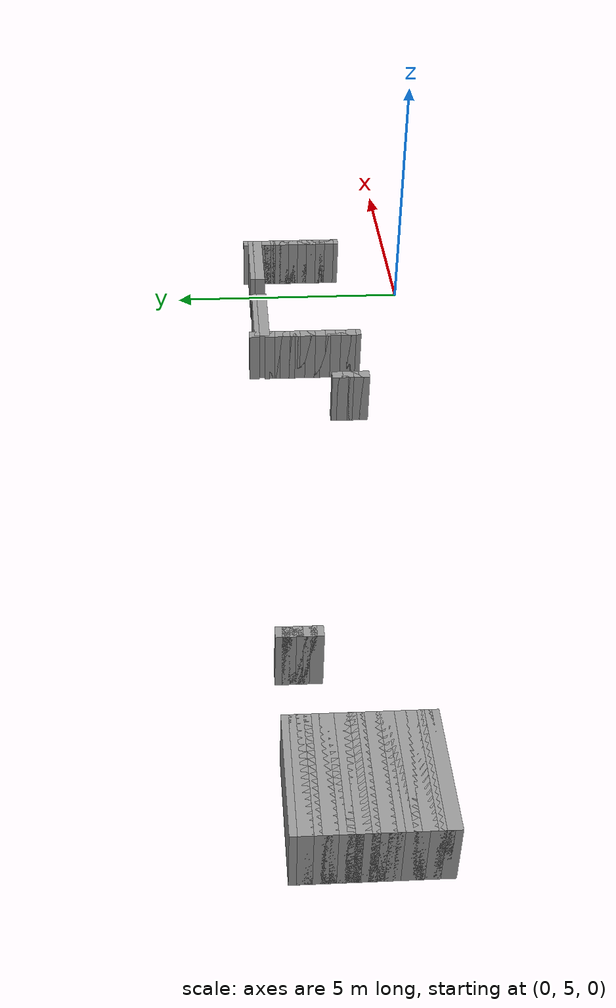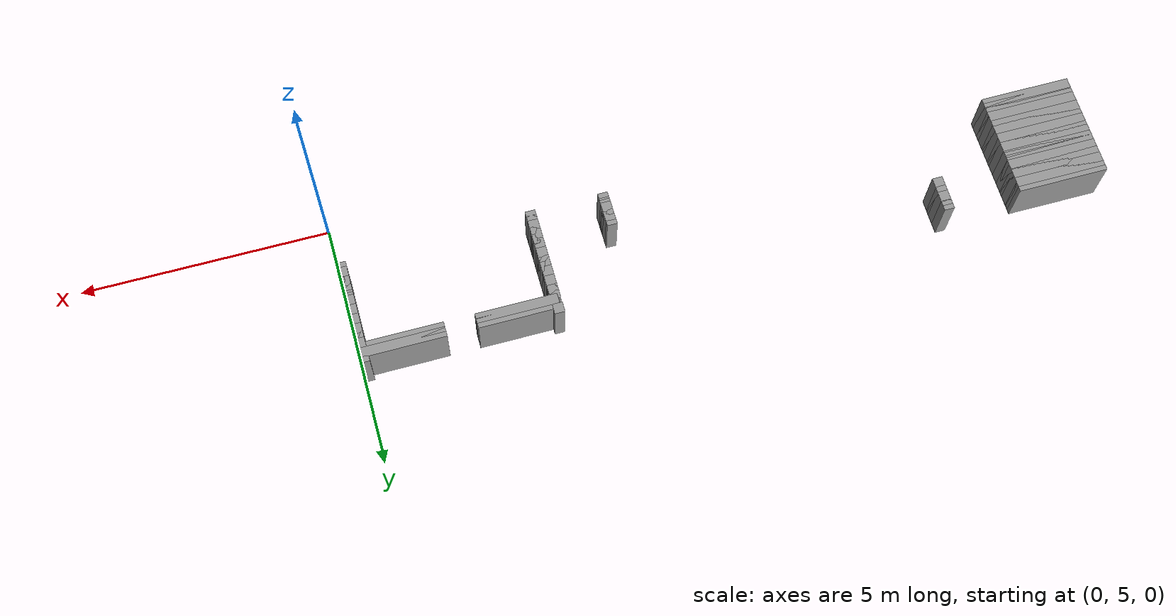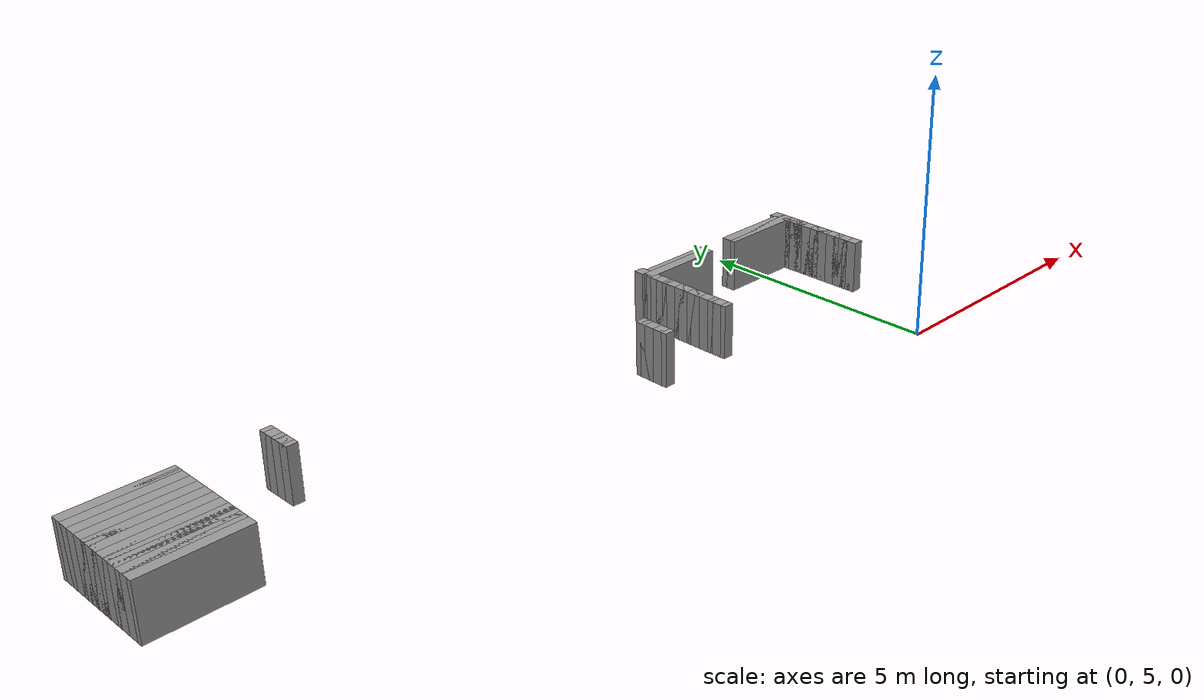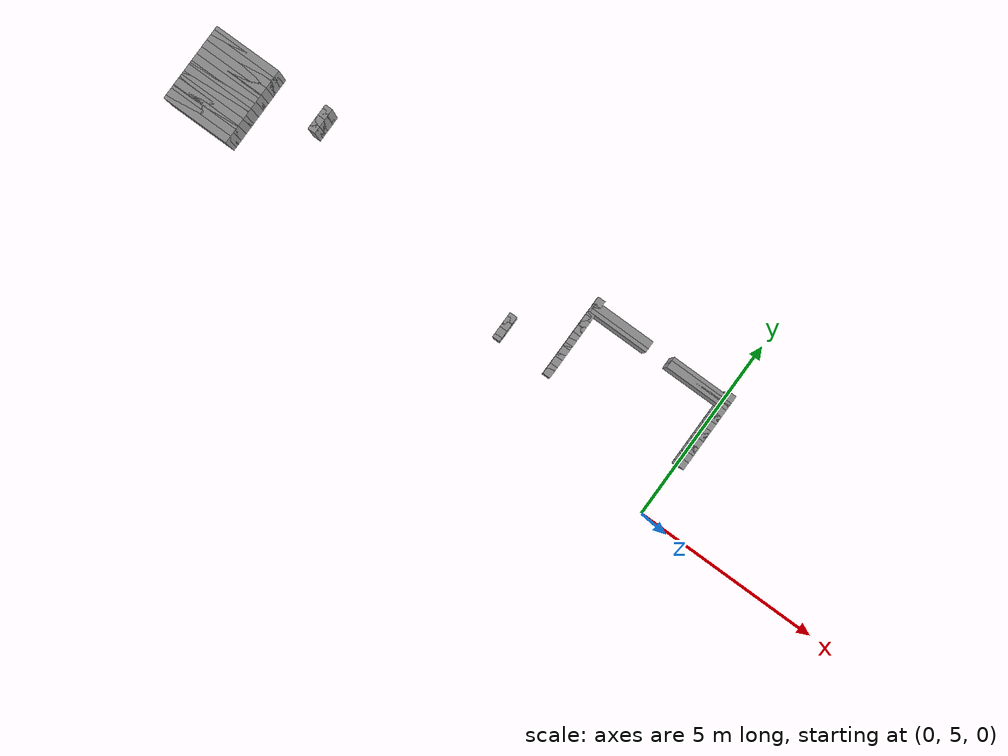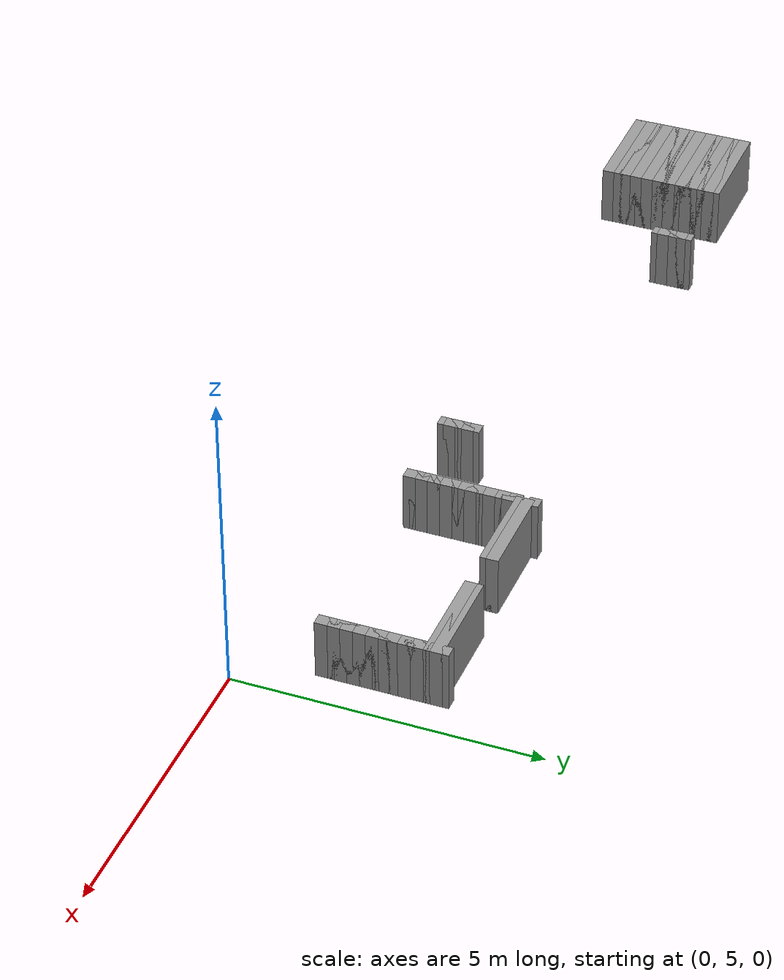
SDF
<sdf version="1.6">
 <world name="GridMap">
  <model name="GridMap">
   <link name="Wall_(38.5,64.0)">
    <collision name="Wall_(38.5,64.0)_Collision">
     <geometry><box><size>0.2 0.2 1.0</size></box></geometry>
     <pose>-3.85 6.4 0.5 0 -0 0</pose>
    </collision>
    <visual name="Wall_(38.5,64.0)_Visual">
     <geometry><box><size>0.2 0.2 1.0</size></box></geometry>
     <pose>-3.85 6.4 0.5 0 -0 0</pose>
     <material>
      <script><uri>file://media/materials/scripts/gazebo.material</uri><name>Gazebo/Grey</name></script>
      <ambient>1 1 1 1</ambient>
     </material>
     <meta><layer>0</layer></meta>
    </visual>
    <pose>0 0 0.5 0 -0 0</pose>
   </link>
   <link name="Wall_(53.0,64.0)">
    <collision name="Wall_(53.0,64.0)_Collision">
     <geometry><box><size>0.2 0.2 1.0</size></box></geometry>
     <pose>-5.300000000000001 6.4 0.5 0 -0 0</pose>
    </collision>
    <visual name="Wall_(53.0,64.0)_Visual">
     <geometry><box><size>0.2 0.2 1.0</size></box></geometry>
     <pose>-5.300000000000001 6.4 0.5 0 -0 0</pose>
     <material>
      <script><uri>file://media/materials/scripts/gazebo.material</uri><name>Gazebo/Grey</name></script>
      <ambient>1 1 1 1</ambient>
     </material>
     <meta><layer>0</layer></meta>
    </visual>
    <pose>0 0 0.5 0 -0 0</pose>
   </link>
   <link name="Wall_(140.0,64.0)">
    <collision name="Wall_(140.0,64.0)_Collision">
     <geometry><box><size>1.8 0.2 1.0</size></box></geometry>
     <pose>-14.0 6.4 0.5 0 -0 0</pose>
    </collision>
    <visual name="Wall_(140.0,64.0)_Visual">
     <geometry><box><size>1.8 0.2 1.0</size></box></geometry>
     <pose>-14.0 6.4 0.5 0 -0 0</pose>
     <material>
      <script><uri>file://media/materials/scripts/gazebo.material</uri><name>Gazebo/Grey</name></script>
      <ambient>1 1 1 1</ambient>
     </material>
     <meta><layer>0</layer></meta>
    </visual>
    <pose>0 0 0.5 0 -0 0</pose>
   </link>
   <link name="Wall_(1.0,65.0)">
    <collision name="Wall_(1.0,65.0)_Collision">
     <geometry><box><size>0.2 0.2 1.0</size></box></geometry>
     <pose>-0.1 6.5 0.5 0 -0 0</pose>
    </collision>
    <visual name="Wall_(1.0,65.0)_Visual">
     <geometry><box><size>0.2 0.2 1.0</size></box></geometry>
     <pose>-0.1 6.5 0.5 0 -0 0</pose>
     <material>
      <script><uri>file://media/materials/scripts/gazebo.material</uri><name>Gazebo/Grey</name></script>
      <ambient>1 1 1 1</ambient>
     </material>
     <meta><layer>0</layer></meta>
    </visual>
    <pose>0 0 0.5 0 -0 0</pose>
   </link>
   <link name="Wall_(38.5,65.0)">
    <collision name="Wall_(38.5,65.0)_Collision">
     <geometry><box><size>0.2 0.2 1.0</size></box></geometry>
     <pose>-3.85 6.5 0.5 0 -0 0</pose>
    </collision>
    <visual name="Wall_(38.5,65.0)_Visual">
     <geometry><box><size>0.2 0.2 1.0</size></box></geometry>
     <pose>-3.85 6.5 0.5 0 -0 0</pose>
     <material>
      <script><uri>file://media/materials/scripts/gazebo.material</uri><name>Gazebo/Grey</name></script>
      <ambient>1 1 1 1</ambient>
     </material>
     <meta><layer>0</layer></meta>
    </visual>
    <pose>0 0 0.5 0 -0 0</pose>
   </link>
   <link name="Wall_(53.0,65.0)">
    <collision name="Wall_(53.0,65.0)_Collision">
     <geometry><box><size>0.2 0.2 1.0</size></box></geometry>
     <pose>-5.300000000000001 6.5 0.5 0 -0 0</pose>
    </collision>
    <visual name="Wall_(53.0,65.0)_Visual">
     <geometry><box><size>0.2 0.2 1.0</size></box></geometry>
     <pose>-5.300000000000001 6.5 0.5 0 -0 0</pose>
     <material>
      <script><uri>file://media/materials/scripts/gazebo.material</uri><name>Gazebo/Grey</name></script>
      <ambient>1 1 1 1</ambient>
     </material>
     <meta><layer>0</layer></meta>
    </visual>
    <pose>0 0 0.5 0 -0 0</pose>
   </link>
   <link name="Wall_(140.0,65.0)">
    <collision name="Wall_(140.0,65.0)_Collision">
     <geometry><box><size>1.8 0.2 1.0</size></box></geometry>
     <pose>-14.0 6.5 0.5 0 -0 0</pose>
    </collision>
    <visual name="Wall_(140.0,65.0)_Visual">
     <geometry><box><size>1.8 0.2 1.0</size></box></geometry>
     <pose>-14.0 6.5 0.5 0 -0 0</pose>
     <material>
      <script><uri>file://media/materials/scripts/gazebo.material</uri><name>Gazebo/Grey</name></script>
      <ambient>1 1 1 1</ambient>
     </material>
     <meta><layer>0</layer></meta>
    </visual>
    <pose>0 0 0.5 0 -0 0</pose>
   </link>
   <link name="Wall_(1.0,66.0)">
    <collision name="Wall_(1.0,66.0)_Collision">
     <geometry><box><size>0.2 0.2 1.0</size></box></geometry>
     <pose>-0.1 6.6000000000000005 0.5 0 -0 0</pose>
    </collision>
    <visual name="Wall_(1.0,66.0)_Visual">
     <geometry><box><size>0.2 0.2 1.0</size></box></geometry>
     <pose>-0.1 6.6000000000000005 0.5 0 -0 0</pose>
     <material>
      <script><uri>file://media/materials/scripts/gazebo.material</uri><name>Gazebo/Grey</name></script>
      <ambient>1 1 1 1</ambient>
     </material>
     <meta><layer>0</layer></meta>
    </visual>
    <pose>0 0 0.5 0 -0 0</pose>
   </link>
   <link name="Wall_(38.5,66.0)">
    <collision name="Wall_(38.5,66.0)_Collision">
     <geometry><box><size>0.2 0.2 1.0</size></box></geometry>
     <pose>-3.85 6.6000000000000005 0.5 0 -0 0</pose>
    </collision>
    <visual name="Wall_(38.5,66.0)_Visual">
     <geometry><box><size>0.2 0.2 1.0</size></box></geometry>
     <pose>-3.85 6.6000000000000005 0.5 0 -0 0</pose>
     <material>
      <script><uri>file://media/materials/scripts/gazebo.material</uri><name>Gazebo/Grey</name></script>
      <ambient>1 1 1 1</ambient>
     </material>
     <meta><layer>0</layer></meta>
    </visual>
    <pose>0 0 0.5 0 -0 0</pose>
   </link>
   <link name="Wall_(53.0,66.0)">
    <collision name="Wall_(53.0,66.0)_Collision">
     <geometry><box><size>0.2 0.2 1.0</size></box></geometry>
     <pose>-5.300000000000001 6.6000000000000005 0.5 0 -0 0</pose>
    </collision>
    <visual name="Wall_(53.0,66.0)_Visual">
     <geometry><box><size>0.2 0.2 1.0</size></box></geometry>
     <pose>-5.300000000000001 6.6000000000000005 0.5 0 -0 0</pose>
     <material>
      <script><uri>file://media/materials/scripts/gazebo.material</uri><name>Gazebo/Grey</name></script>
      <ambient>1 1 1 1</ambient>
     </material>
     <meta><layer>0</layer></meta>
    </visual>
    <pose>0 0 0.5 0 -0 0</pose>
   </link>
   <link name="Wall_(140.0,66.0)">
    <collision name="Wall_(140.0,66.0)_Collision">
     <geometry><box><size>1.8 0.2 1.0</size></box></geometry>
     <pose>-14.0 6.6000000000000005 0.5 0 -0 0</pose>
    </collision>
    <visual name="Wall_(140.0,66.0)_Visual">
     <geometry><box><size>1.8 0.2 1.0</size></box></geometry>
     <pose>-14.0 6.6000000000000005 0.5 0 -0 0</pose>
     <material>
      <script><uri>file://media/materials/scripts/gazebo.material</uri><name>Gazebo/Grey</name></script>
      <ambient>1 1 1 1</ambient>
     </material>
     <meta><layer>0</layer></meta>
    </visual>
    <pose>0 0 0.5 0 -0 0</pose>
   </link>
   <link name="Wall_(1.0,67.0)">
    <collision name="Wall_(1.0,67.0)_Collision">
     <geometry><box><size>0.2 0.2 1.0</size></box></geometry>
     <pose>-0.1 6.7 0.5 0 -0 0</pose>
    </collision>
    <visual name="Wall_(1.0,67.0)_Visual">
     <geometry><box><size>0.2 0.2 1.0</size></box></geometry>
     <pose>-0.1 6.7 0.5 0 -0 0</pose>
     <material>
      <script><uri>file://media/materials/scripts/gazebo.material</uri><name>Gazebo/Grey</name></script>
      <ambient>1 1 1 1</ambient>
     </material>
     <meta><layer>0</layer></meta>
    </visual>
    <pose>0 0 0.5 0 -0 0</pose>
   </link>
   <link name="Wall_(38.5,67.0)">
    <collision name="Wall_(38.5,67.0)_Collision">
     <geometry><box><size>0.2 0.2 1.0</size></box></geometry>
     <pose>-3.85 6.7 0.5 0 -0 0</pose>
    </collision>
    <visual name="Wall_(38.5,67.0)_Visual">
     <geometry><box><size>0.2 0.2 1.0</size></box></geometry>
     <pose>-3.85 6.7 0.5 0 -0 0</pose>
     <material>
      <script><uri>file://media/materials/scripts/gazebo.material</uri><name>Gazebo/Grey</name></script>
      <ambient>1 1 1 1</ambient>
     </material>
     <meta><layer>0</layer></meta>
    </visual>
    <pose>0 0 0.5 0 -0 0</pose>
   </link>
   <link name="Wall_(53.0,67.0)">
    <collision name="Wall_(53.0,67.0)_Collision">
     <geometry><box><size>0.2 0.2 1.0</size></box></geometry>
     <pose>-5.300000000000001 6.7 0.5 0 -0 0</pose>
    </collision>
    <visual name="Wall_(53.0,67.0)_Visual">
     <geometry><box><size>0.2 0.2 1.0</size></box></geometry>
     <pose>-5.300000000000001 6.7 0.5 0 -0 0</pose>
     <material>
      <script><uri>file://media/materials/scripts/gazebo.material</uri><name>Gazebo/Grey</name></script>
      <ambient>1 1 1 1</ambient>
     </material>
     <meta><layer>0</layer></meta>
    </visual>
    <pose>0 0 0.5 0 -0 0</pose>
   </link>
   <link name="Wall_(140.0,67.0)">
    <collision name="Wall_(140.0,67.0)_Collision">
     <geometry><box><size>1.8 0.2 1.0</size></box></geometry>
     <pose>-14.0 6.7 0.5 0 -0 0</pose>
    </collision>
    <visual name="Wall_(140.0,67.0)_Visual">
     <geometry><box><size>1.8 0.2 1.0</size></box></geometry>
     <pose>-14.0 6.7 0.5 0 -0 0</pose>
     <material>
      <script><uri>file://media/materials/scripts/gazebo.material</uri><name>Gazebo/Grey</name></script>
      <ambient>1 1 1 1</ambient>
     </material>
     <meta><layer>0</layer></meta>
    </visual>
    <pose>0 0 0.5 0 -0 0</pose>
   </link>
   <link name="Wall_(1.0,68.0)">
    <collision name="Wall_(1.0,68.0)_Collision">
     <geometry><box><size>0.2 0.2 1.0</size></box></geometry>
     <pose>-0.1 6.800000000000001 0.5 0 -0 0</pose>
    </collision>
    <visual name="Wall_(1.0,68.0)_Visual">
     <geometry><box><size>0.2 0.2 1.0</size></box></geometry>
     <pose>-0.1 6.800000000000001 0.5 0 -0 0</pose>
     <material>
      <script><uri>file://media/materials/scripts/gazebo.material</uri><name>Gazebo/Grey</name></script>
      <ambient>1 1 1 1</ambient>
     </material>
     <meta><layer>0</layer></meta>
    </visual>
    <pose>0 0 0.5 0 -0 0</pose>
   </link>
   <link name="Wall_(38.5,68.0)">
    <collision name="Wall_(38.5,68.0)_Collision">
     <geometry><box><size>0.2 0.2 1.0</size></box></geometry>
     <pose>-3.85 6.800000000000001 0.5 0 -0 0</pose>
    </collision>
    <visual name="Wall_(38.5,68.0)_Visual">
     <geometry><box><size>0.2 0.2 1.0</size></box></geometry>
     <pose>-3.85 6.800000000000001 0.5 0 -0 0</pose>
     <material>
      <script><uri>file://media/materials/scripts/gazebo.material</uri><name>Gazebo/Grey</name></script>
      <ambient>1 1 1 1</ambient>
     </material>
     <meta><layer>0</layer></meta>
    </visual>
    <pose>0 0 0.5 0 -0 0</pose>
   </link>
   <link name="Wall_(53.0,68.0)">
    <collision name="Wall_(53.0,68.0)_Collision">
     <geometry><box><size>0.2 0.2 1.0</size></box></geometry>
     <pose>-5.300000000000001 6.800000000000001 0.5 0 -0 0</pose>
    </collision>
    <visual name="Wall_(53.0,68.0)_Visual">
     <geometry><box><size>0.2 0.2 1.0</size></box></geometry>
     <pose>-5.300000000000001 6.800000000000001 0.5 0 -0 0</pose>
     <material>
      <script><uri>file://media/materials/scripts/gazebo.material</uri><name>Gazebo/Grey</name></script>
      <ambient>1 1 1 1</ambient>
     </material>
     <meta><layer>0</layer></meta>
    </visual>
    <pose>0 0 0.5 0 -0 0</pose>
   </link>
   <link name="Wall_(140.0,68.0)">
    <collision name="Wall_(140.0,68.0)_Collision">
     <geometry><box><size>1.8 0.2 1.0</size></box></geometry>
     <pose>-14.0 6.800000000000001 0.5 0 -0 0</pose>
    </collision>
    <visual name="Wall_(140.0,68.0)_Visual">
     <geometry><box><size>1.8 0.2 1.0</size></box></geometry>
     <pose>-14.0 6.800000000000001 0.5 0 -0 0</pose>
     <material>
      <script><uri>file://media/materials/scripts/gazebo.material</uri><name>Gazebo/Grey</name></script>
      <ambient>1 1 1 1</ambient>
     </material>
     <meta><layer>0</layer></meta>
    </visual>
    <pose>0 0 0.5 0 -0 0</pose>
   </link>
   <link name="Wall_(1.0,69.0)">
    <collision name="Wall_(1.0,69.0)_Collision">
     <geometry><box><size>0.2 0.2 1.0</size></box></geometry>
     <pose>-0.1 6.9 0.5 0 -0 0</pose>
    </collision>
    <visual name="Wall_(1.0,69.0)_Visual">
     <geometry><box><size>0.2 0.2 1.0</size></box></geometry>
     <pose>-0.1 6.9 0.5 0 -0 0</pose>
     <material>
      <script><uri>file://media/materials/scripts/gazebo.material</uri><name>Gazebo/Grey</name></script>
      <ambient>1 1 1 1</ambient>
     </material>
     <meta><layer>0</layer></meta>
    </visual>
    <pose>0 0 0.5 0 -0 0</pose>
   </link>
   <link name="Wall_(38.5,69.0)">
    <collision name="Wall_(38.5,69.0)_Collision">
     <geometry><box><size>0.2 0.2 1.0</size></box></geometry>
     <pose>-3.85 6.9 0.5 0 -0 0</pose>
    </collision>
    <visual name="Wall_(38.5,69.0)_Visual">
     <geometry><box><size>0.2 0.2 1.0</size></box></geometry>
     <pose>-3.85 6.9 0.5 0 -0 0</pose>
     <material>
      <script><uri>file://media/materials/scripts/gazebo.material</uri><name>Gazebo/Grey</name></script>
      <ambient>1 1 1 1</ambient>
     </material>
     <meta><layer>0</layer></meta>
    </visual>
    <pose>0 0 0.5 0 -0 0</pose>
   </link>
   <link name="Wall_(53.0,69.0)">
    <collision name="Wall_(53.0,69.0)_Collision">
     <geometry><box><size>0.2 0.2 1.0</size></box></geometry>
     <pose>-5.300000000000001 6.9 0.5 0 -0 0</pose>
    </collision>
    <visual name="Wall_(53.0,69.0)_Visual">
     <geometry><box><size>0.2 0.2 1.0</size></box></geometry>
     <pose>-5.300000000000001 6.9 0.5 0 -0 0</pose>
     <material>
      <script><uri>file://media/materials/scripts/gazebo.material</uri><name>Gazebo/Grey</name></script>
      <ambient>1 1 1 1</ambient>
     </material>
     <meta><layer>0</layer></meta>
    </visual>
    <pose>0 0 0.5 0 -0 0</pose>
   </link>
   <link name="Wall_(140.0,69.0)">
    <collision name="Wall_(140.0,69.0)_Collision">
     <geometry><box><size>1.8 0.2 1.0</size></box></geometry>
     <pose>-14.0 6.9 0.5 0 -0 0</pose>
    </collision>
    <visual name="Wall_(140.0,69.0)_Visual">
     <geometry><box><size>1.8 0.2 1.0</size></box></geometry>
     <pose>-14.0 6.9 0.5 0 -0 0</pose>
     <material>
      <script><uri>file://media/materials/scripts/gazebo.material</uri><name>Gazebo/Grey</name></script>
      <ambient>1 1 1 1</ambient>
     </material>
     <meta><layer>0</layer></meta>
    </visual>
    <pose>0 0 0.5 0 -0 0</pose>
   </link>
   <link name="Wall_(1.0,70.0)">
    <collision name="Wall_(1.0,70.0)_Collision">
     <geometry><box><size>0.2 0.2 1.0</size></box></geometry>
     <pose>-0.1 7.0 0.5 0 -0 0</pose>
    </collision>
    <visual name="Wall_(1.0,70.0)_Visual">
     <geometry><box><size>0.2 0.2 1.0</size></box></geometry>
     <pose>-0.1 7.0 0.5 0 -0 0</pose>
     <material>
      <script><uri>file://media/materials/scripts/gazebo.material</uri><name>Gazebo/Grey</name></script>
      <ambient>1 1 1 1</ambient>
     </material>
     <meta><layer>0</layer></meta>
    </visual>
    <pose>0 0 0.5 0 -0 0</pose>
   </link>
   <link name="Wall_(38.5,70.0)">
    <collision name="Wall_(38.5,70.0)_Collision">
     <geometry><box><size>0.2 0.2 1.0</size></box></geometry>
     <pose>-3.85 7.0 0.5 0 -0 0</pose>
    </collision>
    <visual name="Wall_(38.5,70.0)_Visual">
     <geometry><box><size>0.2 0.2 1.0</size></box></geometry>
     <pose>-3.85 7.0 0.5 0 -0 0</pose>
     <material>
      <script><uri>file://media/materials/scripts/gazebo.material</uri><name>Gazebo/Grey</name></script>
      <ambient>1 1 1 1</ambient>
     </material>
     <meta><layer>0</layer></meta>
    </visual>
    <pose>0 0 0.5 0 -0 0</pose>
   </link>
   <link name="Wall_(140.0,70.0)">
    <collision name="Wall_(140.0,70.0)_Collision">
     <geometry><box><size>1.8 0.2 1.0</size></box></geometry>
     <pose>-14.0 7.0 0.5 0 -0 0</pose>
    </collision>
    <visual name="Wall_(140.0,70.0)_Visual">
     <geometry><box><size>1.8 0.2 1.0</size></box></geometry>
     <pose>-14.0 7.0 0.5 0 -0 0</pose>
     <material>
      <script><uri>file://media/materials/scripts/gazebo.material</uri><name>Gazebo/Grey</name></script>
      <ambient>1 1 1 1</ambient>
     </material>
     <meta><layer>0</layer></meta>
    </visual>
    <pose>0 0 0.5 0 -0 0</pose>
   </link>
   <link name="Wall_(1.0,71.0)">
    <collision name="Wall_(1.0,71.0)_Collision">
     <geometry><box><size>0.2 0.2 1.0</size></box></geometry>
     <pose>-0.1 7.1000000000000005 0.5 0 -0 0</pose>
    </collision>
    <visual name="Wall_(1.0,71.0)_Visual">
     <geometry><box><size>0.2 0.2 1.0</size></box></geometry>
     <pose>-0.1 7.1000000000000005 0.5 0 -0 0</pose>
     <material>
      <script><uri>file://media/materials/scripts/gazebo.material</uri><name>Gazebo/Grey</name></script>
      <ambient>1 1 1 1</ambient>
     </material>
     <meta><layer>0</layer></meta>
    </visual>
    <pose>0 0 0.5 0 -0 0</pose>
   </link>
   <link name="Wall_(38.5,71.0)">
    <collision name="Wall_(38.5,71.0)_Collision">
     <geometry><box><size>0.2 0.2 1.0</size></box></geometry>
     <pose>-3.85 7.1000000000000005 0.5 0 -0 0</pose>
    </collision>
    <visual name="Wall_(38.5,71.0)_Visual">
     <geometry><box><size>0.2 0.2 1.0</size></box></geometry>
     <pose>-3.85 7.1000000000000005 0.5 0 -0 0</pose>
     <material>
      <script><uri>file://media/materials/scripts/gazebo.material</uri><name>Gazebo/Grey</name></script>
      <ambient>1 1 1 1</ambient>
     </material>
     <meta><layer>0</layer></meta>
    </visual>
    <pose>0 0 0.5 0 -0 0</pose>
   </link>
   <link name="Wall_(140.0,71.0)">
    <collision name="Wall_(140.0,71.0)_Collision">
     <geometry><box><size>1.8 0.2 1.0</size></box></geometry>
     <pose>-14.0 7.1000000000000005 0.5 0 -0 0</pose>
    </collision>
    <visual name="Wall_(140.0,71.0)_Visual">
     <geometry><box><size>1.8 0.2 1.0</size></box></geometry>
     <pose>-14.0 7.1000000000000005 0.5 0 -0 0</pose>
     <material>
      <script><uri>file://media/materials/scripts/gazebo.material</uri><name>Gazebo/Grey</name></script>
      <ambient>1 1 1 1</ambient>
     </material>
     <meta><layer>0</layer></meta>
    </visual>
    <pose>0 0 0.5 0 -0 0</pose>
   </link>
   <link name="Wall_(1.0,72.0)">
    <collision name="Wall_(1.0,72.0)_Collision">
     <geometry><box><size>0.2 0.2 1.0</size></box></geometry>
     <pose>-0.1 7.2 0.5 0 -0 0</pose>
    </collision>
    <visual name="Wall_(1.0,72.0)_Visual">
     <geometry><box><size>0.2 0.2 1.0</size></box></geometry>
     <pose>-0.1 7.2 0.5 0 -0 0</pose>
     <material>
      <script><uri>file://media/materials/scripts/gazebo.material</uri><name>Gazebo/Grey</name></script>
      <ambient>1 1 1 1</ambient>
     </material>
     <meta><layer>0</layer></meta>
    </visual>
    <pose>0 0 0.5 0 -0 0</pose>
   </link>
   <link name="Wall_(38.5,72.0)">
    <collision name="Wall_(38.5,72.0)_Collision">
     <geometry><box><size>0.2 0.2 1.0</size></box></geometry>
     <pose>-3.85 7.2 0.5 0 -0 0</pose>
    </collision>
    <visual name="Wall_(38.5,72.0)_Visual">
     <geometry><box><size>0.2 0.2 1.0</size></box></geometry>
     <pose>-3.85 7.2 0.5 0 -0 0</pose>
     <material>
      <script><uri>file://media/materials/scripts/gazebo.material</uri><name>Gazebo/Grey</name></script>
      <ambient>1 1 1 1</ambient>
     </material>
     <meta><layer>0</layer></meta>
    </visual>
    <pose>0 0 0.5 0 -0 0</pose>
   </link>
   <link name="Wall_(140.0,72.0)">
    <collision name="Wall_(140.0,72.0)_Collision">
     <geometry><box><size>1.8 0.2 1.0</size></box></geometry>
     <pose>-14.0 7.2 0.5 0 -0 0</pose>
    </collision>
    <visual name="Wall_(140.0,72.0)_Visual">
     <geometry><box><size>1.8 0.2 1.0</size></box></geometry>
     <pose>-14.0 7.2 0.5 0 -0 0</pose>
     <material>
      <script><uri>file://media/materials/scripts/gazebo.material</uri><name>Gazebo/Grey</name></script>
      <ambient>1 1 1 1</ambient>
     </material>
     <meta><layer>0</layer></meta>
    </visual>
    <pose>0 0 0.5 0 -0 0</pose>
   </link>
   <link name="Wall_(1.0,73.0)">
    <collision name="Wall_(1.0,73.0)_Collision">
     <geometry><box><size>0.2 0.2 1.0</size></box></geometry>
     <pose>-0.1 7.300000000000001 0.5 0 -0 0</pose>
    </collision>
    <visual name="Wall_(1.0,73.0)_Visual">
     <geometry><box><size>0.2 0.2 1.0</size></box></geometry>
     <pose>-0.1 7.300000000000001 0.5 0 -0 0</pose>
     <material>
      <script><uri>file://media/materials/scripts/gazebo.material</uri><name>Gazebo/Grey</name></script>
      <ambient>1 1 1 1</ambient>
     </material>
     <meta><layer>0</layer></meta>
    </visual>
    <pose>0 0 0.5 0 -0 0</pose>
   </link>
   <link name="Wall_(38.5,73.0)">
    <collision name="Wall_(38.5,73.0)_Collision">
     <geometry><box><size>0.2 0.2 1.0</size></box></geometry>
     <pose>-3.85 7.300000000000001 0.5 0 -0 0</pose>
    </collision>
    <visual name="Wall_(38.5,73.0)_Visual">
     <geometry><box><size>0.2 0.2 1.0</size></box></geometry>
     <pose>-3.85 7.300000000000001 0.5 0 -0 0</pose>
     <material>
      <script><uri>file://media/materials/scripts/gazebo.material</uri><name>Gazebo/Grey</name></script>
      <ambient>1 1 1 1</ambient>
     </material>
     <meta><layer>0</layer></meta>
    </visual>
    <pose>0 0 0.5 0 -0 0</pose>
   </link>
   <link name="Wall_(140.0,73.0)">
    <collision name="Wall_(140.0,73.0)_Collision">
     <geometry><box><size>1.8 0.2 1.0</size></box></geometry>
     <pose>-14.0 7.300000000000001 0.5 0 -0 0</pose>
    </collision>
    <visual name="Wall_(140.0,73.0)_Visual">
     <geometry><box><size>1.8 0.2 1.0</size></box></geometry>
     <pose>-14.0 7.300000000000001 0.5 0 -0 0</pose>
     <material>
      <script><uri>file://media/materials/scripts/gazebo.material</uri><name>Gazebo/Grey</name></script>
      <ambient>1 1 1 1</ambient>
     </material>
     <meta><layer>0</layer></meta>
    </visual>
    <pose>0 0 0.5 0 -0 0</pose>
   </link>
   <link name="Wall_(1.0,74.0)">
    <collision name="Wall_(1.0,74.0)_Collision">
     <geometry><box><size>0.2 0.2 1.0</size></box></geometry>
     <pose>-0.1 7.4 0.5 0 -0 0</pose>
    </collision>
    <visual name="Wall_(1.0,74.0)_Visual">
     <geometry><box><size>0.2 0.2 1.0</size></box></geometry>
     <pose>-0.1 7.4 0.5 0 -0 0</pose>
     <material>
      <script><uri>file://media/materials/scripts/gazebo.material</uri><name>Gazebo/Grey</name></script>
      <ambient>1 1 1 1</ambient>
     </material>
     <meta><layer>0</layer></meta>
    </visual>
    <pose>0 0 0.5 0 -0 0</pose>
   </link>
   <link name="Wall_(38.5,74.0)">
    <collision name="Wall_(38.5,74.0)_Collision">
     <geometry><box><size>0.2 0.2 1.0</size></box></geometry>
     <pose>-3.85 7.4 0.5 0 -0 0</pose>
    </collision>
    <visual name="Wall_(38.5,74.0)_Visual">
     <geometry><box><size>0.2 0.2 1.0</size></box></geometry>
     <pose>-3.85 7.4 0.5 0 -0 0</pose>
     <material>
      <script><uri>file://media/materials/scripts/gazebo.material</uri><name>Gazebo/Grey</name></script>
      <ambient>1 1 1 1</ambient>
     </material>
     <meta><layer>0</layer></meta>
    </visual>
    <pose>0 0 0.5 0 -0 0</pose>
   </link>
   <link name="Wall_(140.0,74.0)">
    <collision name="Wall_(140.0,74.0)_Collision">
     <geometry><box><size>1.8 0.2 1.0</size></box></geometry>
     <pose>-14.0 7.4 0.5 0 -0 0</pose>
    </collision>
    <visual name="Wall_(140.0,74.0)_Visual">
     <geometry><box><size>1.8 0.2 1.0</size></box></geometry>
     <pose>-14.0 7.4 0.5 0 -0 0</pose>
     <material>
      <script><uri>file://media/materials/scripts/gazebo.material</uri><name>Gazebo/Grey</name></script>
      <ambient>1 1 1 1</ambient>
     </material>
     <meta><layer>0</layer></meta>
    </visual>
    <pose>0 0 0.5 0 -0 0</pose>
   </link>
   <link name="Wall_(1.0,75.0)">
    <collision name="Wall_(1.0,75.0)_Collision">
     <geometry><box><size>0.2 0.2 1.0</size></box></geometry>
     <pose>-0.1 7.5 0.5 0 -0 0</pose>
    </collision>
    <visual name="Wall_(1.0,75.0)_Visual">
     <geometry><box><size>0.2 0.2 1.0</size></box></geometry>
     <pose>-0.1 7.5 0.5 0 -0 0</pose>
     <material>
      <script><uri>file://media/materials/scripts/gazebo.material</uri><name>Gazebo/Grey</name></script>
      <ambient>1 1 1 1</ambient>
     </material>
     <meta><layer>0</layer></meta>
    </visual>
    <pose>0 0 0.5 0 -0 0</pose>
   </link>
   <link name="Wall_(38.5,75.0)">
    <collision name="Wall_(38.5,75.0)_Collision">
     <geometry><box><size>0.2 0.2 1.0</size></box></geometry>
     <pose>-3.85 7.5 0.5 0 -0 0</pose>
    </collision>
    <visual name="Wall_(38.5,75.0)_Visual">
     <geometry><box><size>0.2 0.2 1.0</size></box></geometry>
     <pose>-3.85 7.5 0.5 0 -0 0</pose>
     <material>
      <script><uri>file://media/materials/scripts/gazebo.material</uri><name>Gazebo/Grey</name></script>
      <ambient>1 1 1 1</ambient>
     </material>
     <meta><layer>0</layer></meta>
    </visual>
    <pose>0 0 0.5 0 -0 0</pose>
   </link>
   <link name="Wall_(140.0,75.0)">
    <collision name="Wall_(140.0,75.0)_Collision">
     <geometry><box><size>1.8 0.2 1.0</size></box></geometry>
     <pose>-14.0 7.5 0.5 0 -0 0</pose>
    </collision>
    <visual name="Wall_(140.0,75.0)_Visual">
     <geometry><box><size>1.8 0.2 1.0</size></box></geometry>
     <pose>-14.0 7.5 0.5 0 -0 0</pose>
     <material>
      <script><uri>file://media/materials/scripts/gazebo.material</uri><name>Gazebo/Grey</name></script>
      <ambient>1 1 1 1</ambient>
     </material>
     <meta><layer>0</layer></meta>
    </visual>
    <pose>0 0 0.5 0 -0 0</pose>
   </link>
   <link name="Wall_(1.0,76.0)">
    <collision name="Wall_(1.0,76.0)_Collision">
     <geometry><box><size>0.2 0.2 1.0</size></box></geometry>
     <pose>-0.1 7.6000000000000005 0.5 0 -0 0</pose>
    </collision>
    <visual name="Wall_(1.0,76.0)_Visual">
     <geometry><box><size>0.2 0.2 1.0</size></box></geometry>
     <pose>-0.1 7.6000000000000005 0.5 0 -0 0</pose>
     <material>
      <script><uri>file://media/materials/scripts/gazebo.material</uri><name>Gazebo/Grey</name></script>
      <ambient>1 1 1 1</ambient>
     </material>
     <meta><layer>0</layer></meta>
    </visual>
    <pose>0 0 0.5 0 -0 0</pose>
   </link>
   <link name="Wall_(38.5,76.0)">
    <collision name="Wall_(38.5,76.0)_Collision">
     <geometry><box><size>0.2 0.2 1.0</size></box></geometry>
     <pose>-3.85 7.6000000000000005 0.5 0 -0 0</pose>
    </collision>
    <visual name="Wall_(38.5,76.0)_Visual">
     <geometry><box><size>0.2 0.2 1.0</size></box></geometry>
     <pose>-3.85 7.6000000000000005 0.5 0 -0 0</pose>
     <material>
      <script><uri>file://media/materials/scripts/gazebo.material</uri><name>Gazebo/Grey</name></script>
      <ambient>1 1 1 1</ambient>
     </material>
     <meta><layer>0</layer></meta>
    </visual>
    <pose>0 0 0.5 0 -0 0</pose>
   </link>
   <link name="Wall_(140.0,76.0)">
    <collision name="Wall_(140.0,76.0)_Collision">
     <geometry><box><size>1.8 0.2 1.0</size></box></geometry>
     <pose>-14.0 7.6000000000000005 0.5 0 -0 0</pose>
    </collision>
    <visual name="Wall_(140.0,76.0)_Visual">
     <geometry><box><size>1.8 0.2 1.0</size></box></geometry>
     <pose>-14.0 7.6000000000000005 0.5 0 -0 0</pose>
     <material>
      <script><uri>file://media/materials/scripts/gazebo.material</uri><name>Gazebo/Grey</name></script>
      <ambient>1 1 1 1</ambient>
     </material>
     <meta><layer>0</layer></meta>
    </visual>
    <pose>0 0 0.5 0 -0 0</pose>
   </link>
   <link name="Wall_(1.0,77.0)">
    <collision name="Wall_(1.0,77.0)_Collision">
     <geometry><box><size>0.2 0.2 1.0</size></box></geometry>
     <pose>-0.1 7.7 0.5 0 -0 0</pose>
    </collision>
    <visual name="Wall_(1.0,77.0)_Visual">
     <geometry><box><size>0.2 0.2 1.0</size></box></geometry>
     <pose>-0.1 7.7 0.5 0 -0 0</pose>
     <material>
      <script><uri>file://media/materials/scripts/gazebo.material</uri><name>Gazebo/Grey</name></script>
      <ambient>1 1 1 1</ambient>
     </material>
     <meta><layer>0</layer></meta>
    </visual>
    <pose>0 0 0.5 0 -0 0</pose>
   </link>
   <link name="Wall_(38.5,77.0)">
    <collision name="Wall_(38.5,77.0)_Collision">
     <geometry><box><size>0.2 0.2 1.0</size></box></geometry>
     <pose>-3.85 7.7 0.5 0 -0 0</pose>
    </collision>
    <visual name="Wall_(38.5,77.0)_Visual">
     <geometry><box><size>0.2 0.2 1.0</size></box></geometry>
     <pose>-3.85 7.7 0.5 0 -0 0</pose>
     <material>
      <script><uri>file://media/materials/scripts/gazebo.material</uri><name>Gazebo/Grey</name></script>
      <ambient>1 1 1 1</ambient>
     </material>
     <meta><layer>0</layer></meta>
    </visual>
    <pose>0 0 0.5 0 -0 0</pose>
   </link>
   <link name="Wall_(140.0,77.0)">
    <collision name="Wall_(140.0,77.0)_Collision">
     <geometry><box><size>1.8 0.2 1.0</size></box></geometry>
     <pose>-14.0 7.7 0.5 0 -0 0</pose>
    </collision>
    <visual name="Wall_(140.0,77.0)_Visual">
     <geometry><box><size>1.8 0.2 1.0</size></box></geometry>
     <pose>-14.0 7.7 0.5 0 -0 0</pose>
     <material>
      <script><uri>file://media/materials/scripts/gazebo.material</uri><name>Gazebo/Grey</name></script>
      <ambient>1 1 1 1</ambient>
     </material>
     <meta><layer>0</layer></meta>
    </visual>
    <pose>0 0 0.5 0 -0 0</pose>
   </link>
   <link name="Wall_(1.0,78.0)">
    <collision name="Wall_(1.0,78.0)_Collision">
     <geometry><box><size>0.2 0.2 1.0</size></box></geometry>
     <pose>-0.1 7.800000000000001 0.5 0 -0 0</pose>
    </collision>
    <visual name="Wall_(1.0,78.0)_Visual">
     <geometry><box><size>0.2 0.2 1.0</size></box></geometry>
     <pose>-0.1 7.800000000000001 0.5 0 -0 0</pose>
     <material>
      <script><uri>file://media/materials/scripts/gazebo.material</uri><name>Gazebo/Grey</name></script>
      <ambient>1 1 1 1</ambient>
     </material>
     <meta><layer>0</layer></meta>
    </visual>
    <pose>0 0 0.5 0 -0 0</pose>
   </link>
   <link name="Wall_(38.5,78.0)">
    <collision name="Wall_(38.5,78.0)_Collision">
     <geometry><box><size>0.2 0.2 1.0</size></box></geometry>
     <pose>-3.85 7.800000000000001 0.5 0 -0 0</pose>
    </collision>
    <visual name="Wall_(38.5,78.0)_Visual">
     <geometry><box><size>0.2 0.2 1.0</size></box></geometry>
     <pose>-3.85 7.800000000000001 0.5 0 -0 0</pose>
     <material>
      <script><uri>file://media/materials/scripts/gazebo.material</uri><name>Gazebo/Grey</name></script>
      <ambient>1 1 1 1</ambient>
     </material>
     <meta><layer>0</layer></meta>
    </visual>
    <pose>0 0 0.5 0 -0 0</pose>
   </link>
   <link name="Wall_(116.5,78.0)">
    <collision name="Wall_(116.5,78.0)_Collision">
     <geometry><box><size>0.2 0.2 1.0</size></box></geometry>
     <pose>-11.65 7.800000000000001 0.5 0 -0 0</pose>
    </collision>
    <visual name="Wall_(116.5,78.0)_Visual">
     <geometry><box><size>0.2 0.2 1.0</size></box></geometry>
     <pose>-11.65 7.800000000000001 0.5 0 -0 0</pose>
     <material>
      <script><uri>file://media/materials/scripts/gazebo.material</uri><name>Gazebo/Grey</name></script>
      <ambient>1 1 1 1</ambient>
     </material>
     <meta><layer>0</layer></meta>
    </visual>
    <pose>0 0 0.5 0 -0 0</pose>
   </link>
   <link name="Wall_(140.0,78.0)">
    <collision name="Wall_(140.0,78.0)_Collision">
     <geometry><box><size>1.8 0.2 1.0</size></box></geometry>
     <pose>-14.0 7.800000000000001 0.5 0 -0 0</pose>
    </collision>
    <visual name="Wall_(140.0,78.0)_Visual">
     <geometry><box><size>1.8 0.2 1.0</size></box></geometry>
     <pose>-14.0 7.800000000000001 0.5 0 -0 0</pose>
     <material>
      <script><uri>file://media/materials/scripts/gazebo.material</uri><name>Gazebo/Grey</name></script>
      <ambient>1 1 1 1</ambient>
     </material>
     <meta><layer>0</layer></meta>
    </visual>
    <pose>0 0 0.5 0 -0 0</pose>
   </link>
   <link name="Wall_(1.0,79.0)">
    <collision name="Wall_(1.0,79.0)_Collision">
     <geometry><box><size>0.2 0.2 1.0</size></box></geometry>
     <pose>-0.1 7.9 0.5 0 -0 0</pose>
    </collision>
    <visual name="Wall_(1.0,79.0)_Visual">
     <geometry><box><size>0.2 0.2 1.0</size></box></geometry>
     <pose>-0.1 7.9 0.5 0 -0 0</pose>
     <material>
      <script><uri>file://media/materials/scripts/gazebo.material</uri><name>Gazebo/Grey</name></script>
      <ambient>1 1 1 1</ambient>
     </material>
     <meta><layer>0</layer></meta>
    </visual>
    <pose>0 0 0.5 0 -0 0</pose>
   </link>
   <link name="Wall_(38.5,79.0)">
    <collision name="Wall_(38.5,79.0)_Collision">
     <geometry><box><size>0.2 0.2 1.0</size></box></geometry>
     <pose>-3.85 7.9 0.5 0 -0 0</pose>
    </collision>
    <visual name="Wall_(38.5,79.0)_Visual">
     <geometry><box><size>0.2 0.2 1.0</size></box></geometry>
     <pose>-3.85 7.9 0.5 0 -0 0</pose>
     <material>
      <script><uri>file://media/materials/scripts/gazebo.material</uri><name>Gazebo/Grey</name></script>
      <ambient>1 1 1 1</ambient>
     </material>
     <meta><layer>0</layer></meta>
    </visual>
    <pose>0 0 0.5 0 -0 0</pose>
   </link>
   <link name="Wall_(116.5,79.0)">
    <collision name="Wall_(116.5,79.0)_Collision">
     <geometry><box><size>0.2 0.2 1.0</size></box></geometry>
     <pose>-11.65 7.9 0.5 0 -0 0</pose>
    </collision>
    <visual name="Wall_(116.5,79.0)_Visual">
     <geometry><box><size>0.2 0.2 1.0</size></box></geometry>
     <pose>-11.65 7.9 0.5 0 -0 0</pose>
     <material>
      <script><uri>file://media/materials/scripts/gazebo.material</uri><name>Gazebo/Grey</name></script>
      <ambient>1 1 1 1</ambient>
     </material>
     <meta><layer>0</layer></meta>
    </visual>
    <pose>0 0 0.5 0 -0 0</pose>
   </link>
   <link name="Wall_(140.0,79.0)">
    <collision name="Wall_(140.0,79.0)_Collision">
     <geometry><box><size>1.8 0.2 1.0</size></box></geometry>
     <pose>-14.0 7.9 0.5 0 -0 0</pose>
    </collision>
    <visual name="Wall_(140.0,79.0)_Visual">
     <geometry><box><size>1.8 0.2 1.0</size></box></geometry>
     <pose>-14.0 7.9 0.5 0 -0 0</pose>
     <material>
      <script><uri>file://media/materials/scripts/gazebo.material</uri><name>Gazebo/Grey</name></script>
      <ambient>1 1 1 1</ambient>
     </material>
     <meta><layer>0</layer></meta>
    </visual>
    <pose>0 0 0.5 0 -0 0</pose>
   </link>
   <link name="Wall_(1.0,80.0)">
    <collision name="Wall_(1.0,80.0)_Collision">
     <geometry><box><size>0.2 0.2 1.0</size></box></geometry>
     <pose>-0.1 8.0 0.5 0 -0 0</pose>
    </collision>
    <visual name="Wall_(1.0,80.0)_Visual">
     <geometry><box><size>0.2 0.2 1.0</size></box></geometry>
     <pose>-0.1 8.0 0.5 0 -0 0</pose>
     <material>
      <script><uri>file://media/materials/scripts/gazebo.material</uri><name>Gazebo/Grey</name></script>
      <ambient>1 1 1 1</ambient>
     </material>
     <meta><layer>0</layer></meta>
    </visual>
    <pose>0 0 0.5 0 -0 0</pose>
   </link>
   <link name="Wall_(38.5,80.0)">
    <collision name="Wall_(38.5,80.0)_Collision">
     <geometry><box><size>0.2 0.2 1.0</size></box></geometry>
     <pose>-3.85 8.0 0.5 0 -0 0</pose>
    </collision>
    <visual name="Wall_(38.5,80.0)_Visual">
     <geometry><box><size>0.2 0.2 1.0</size></box></geometry>
     <pose>-3.85 8.0 0.5 0 -0 0</pose>
     <material>
      <script><uri>file://media/materials/scripts/gazebo.material</uri><name>Gazebo/Grey</name></script>
      <ambient>1 1 1 1</ambient>
     </material>
     <meta><layer>0</layer></meta>
    </visual>
    <pose>0 0 0.5 0 -0 0</pose>
   </link>
   <link name="Wall_(116.5,80.0)">
    <collision name="Wall_(116.5,80.0)_Collision">
     <geometry><box><size>0.2 0.2 1.0</size></box></geometry>
     <pose>-11.65 8.0 0.5 0 -0 0</pose>
    </collision>
    <visual name="Wall_(116.5,80.0)_Visual">
     <geometry><box><size>0.2 0.2 1.0</size></box></geometry>
     <pose>-11.65 8.0 0.5 0 -0 0</pose>
     <material>
      <script><uri>file://media/materials/scripts/gazebo.material</uri><name>Gazebo/Grey</name></script>
      <ambient>1 1 1 1</ambient>
     </material>
     <meta><layer>0</layer></meta>
    </visual>
    <pose>0 0 0.5 0 -0 0</pose>
   </link>
   <link name="Wall_(140.0,80.0)">
    <collision name="Wall_(140.0,80.0)_Collision">
     <geometry><box><size>1.8 0.2 1.0</size></box></geometry>
     <pose>-14.0 8.0 0.5 0 -0 0</pose>
    </collision>
    <visual name="Wall_(140.0,80.0)_Visual">
     <geometry><box><size>1.8 0.2 1.0</size></box></geometry>
     <pose>-14.0 8.0 0.5 0 -0 0</pose>
     <material>
      <script><uri>file://media/materials/scripts/gazebo.material</uri><name>Gazebo/Grey</name></script>
      <ambient>1 1 1 1</ambient>
     </material>
     <meta><layer>0</layer></meta>
    </visual>
    <pose>0 0 0.5 0 -0 0</pose>
   </link>
   <link name="Wall_(1.0,81.0)">
    <collision name="Wall_(1.0,81.0)_Collision">
     <geometry><box><size>0.2 0.2 1.0</size></box></geometry>
     <pose>-0.1 8.1 0.5 0 -0 0</pose>
    </collision>
    <visual name="Wall_(1.0,81.0)_Visual">
     <geometry><box><size>0.2 0.2 1.0</size></box></geometry>
     <pose>-0.1 8.1 0.5 0 -0 0</pose>
     <material>
      <script><uri>file://media/materials/scripts/gazebo.material</uri><name>Gazebo/Grey</name></script>
      <ambient>1 1 1 1</ambient>
     </material>
     <meta><layer>0</layer></meta>
    </visual>
    <pose>0 0 0.5 0 -0 0</pose>
   </link>
   <link name="Wall_(38.5,81.0)">
    <collision name="Wall_(38.5,81.0)_Collision">
     <geometry><box><size>0.2 0.2 1.0</size></box></geometry>
     <pose>-3.85 8.1 0.5 0 -0 0</pose>
    </collision>
    <visual name="Wall_(38.5,81.0)_Visual">
     <geometry><box><size>0.2 0.2 1.0</size></box></geometry>
     <pose>-3.85 8.1 0.5 0 -0 0</pose>
     <material>
      <script><uri>file://media/materials/scripts/gazebo.material</uri><name>Gazebo/Grey</name></script>
      <ambient>1 1 1 1</ambient>
     </material>
     <meta><layer>0</layer></meta>
    </visual>
    <pose>0 0 0.5 0 -0 0</pose>
   </link>
   <link name="Wall_(116.5,81.0)">
    <collision name="Wall_(116.5,81.0)_Collision">
     <geometry><box><size>0.2 0.2 1.0</size></box></geometry>
     <pose>-11.65 8.1 0.5 0 -0 0</pose>
    </collision>
    <visual name="Wall_(116.5,81.0)_Visual">
     <geometry><box><size>0.2 0.2 1.0</size></box></geometry>
     <pose>-11.65 8.1 0.5 0 -0 0</pose>
     <material>
      <script><uri>file://media/materials/scripts/gazebo.material</uri><name>Gazebo/Grey</name></script>
      <ambient>1 1 1 1</ambient>
     </material>
     <meta><layer>0</layer></meta>
    </visual>
    <pose>0 0 0.5 0 -0 0</pose>
   </link>
   <link name="Wall_(140.0,81.0)">
    <collision name="Wall_(140.0,81.0)_Collision">
     <geometry><box><size>1.8 0.2 1.0</size></box></geometry>
     <pose>-14.0 8.1 0.5 0 -0 0</pose>
    </collision>
    <visual name="Wall_(140.0,81.0)_Visual">
     <geometry><box><size>1.8 0.2 1.0</size></box></geometry>
     <pose>-14.0 8.1 0.5 0 -0 0</pose>
     <material>
      <script><uri>file://media/materials/scripts/gazebo.material</uri><name>Gazebo/Grey</name></script>
      <ambient>1 1 1 1</ambient>
     </material>
     <meta><layer>0</layer></meta>
    </visual>
    <pose>0 0 0.5 0 -0 0</pose>
   </link>
   <link name="Wall_(8.5,82.0)">
    <collision name="Wall_(8.5,82.0)_Collision">
     <geometry><box><size>1.7000000000000002 0.2 1.0</size></box></geometry>
     <pose>-0.8500000000000001 8.200000000000001 0.5 0 -0 0</pose>
    </collision>
    <visual name="Wall_(8.5,82.0)_Visual">
     <geometry><box><size>1.7000000000000002 0.2 1.0</size></box></geometry>
     <pose>-0.8500000000000001 8.200000000000001 0.5 0 -0 0</pose>
     <material>
      <script><uri>file://media/materials/scripts/gazebo.material</uri><name>Gazebo/Grey</name></script>
      <ambient>1 1 1 1</ambient>
     </material>
     <meta><layer>0</layer></meta>
    </visual>
    <pose>0 0 0.5 0 -0 0</pose>
   </link>
   <link name="Wall_(31.0,82.0)">
    <collision name="Wall_(31.0,82.0)_Collision">
     <geometry><box><size>1.6 0.2 1.0</size></box></geometry>
     <pose>-3.1 8.200000000000001 0.5 0 -0 0</pose>
    </collision>
    <visual name="Wall_(31.0,82.0)_Visual">
     <geometry><box><size>1.6 0.2 1.0</size></box></geometry>
     <pose>-3.1 8.200000000000001 0.5 0 -0 0</pose>
     <material>
      <script><uri>file://media/materials/scripts/gazebo.material</uri><name>Gazebo/Grey</name></script>
      <ambient>1 1 1 1</ambient>
     </material>
     <meta><layer>0</layer></meta>
    </visual>
    <pose>0 0 0.5 0 -0 0</pose>
   </link>
   <link name="Wall_(116.5,82.0)">
    <collision name="Wall_(116.5,82.0)_Collision">
     <geometry><box><size>0.2 0.2 1.0</size></box></geometry>
     <pose>-11.65 8.200000000000001 0.5 0 -0 0</pose>
    </collision>
    <visual name="Wall_(116.5,82.0)_Visual">
     <geometry><box><size>0.2 0.2 1.0</size></box></geometry>
     <pose>-11.65 8.200000000000001 0.5 0 -0 0</pose>
     <material>
      <script><uri>file://media/materials/scripts/gazebo.material</uri><name>Gazebo/Grey</name></script>
      <ambient>1 1 1 1</ambient>
     </material>
     <meta><layer>0</layer></meta>
    </visual>
    <pose>0 0 0.5 0 -0 0</pose>
   </link>
   <link name="Wall_(140.0,82.0)">
    <collision name="Wall_(140.0,82.0)_Collision">
     <geometry><box><size>1.8 0.2 1.0</size></box></geometry>
     <pose>-14.0 8.200000000000001 0.5 0 -0 0</pose>
    </collision>
    <visual name="Wall_(140.0,82.0)_Visual">
     <geometry><box><size>1.8 0.2 1.0</size></box></geometry>
     <pose>-14.0 8.200000000000001 0.5 0 -0 0</pose>
     <material>
      <script><uri>file://media/materials/scripts/gazebo.material</uri><name>Gazebo/Grey</name></script>
      <ambient>1 1 1 1</ambient>
     </material>
     <meta><layer>0</layer></meta>
    </visual>
    <pose>0 0 0.5 0 -0 0</pose>
   </link>
   <link name="Wall_(8.5,83.0)">
    <collision name="Wall_(8.5,83.0)_Collision">
     <geometry><box><size>1.7000000000000002 0.2 1.0</size></box></geometry>
     <pose>-0.8500000000000001 8.3 0.5 0 -0 0</pose>
    </collision>
    <visual name="Wall_(8.5,83.0)_Visual">
     <geometry><box><size>1.7000000000000002 0.2 1.0</size></box></geometry>
     <pose>-0.8500000000000001 8.3 0.5 0 -0 0</pose>
     <material>
      <script><uri>file://media/materials/scripts/gazebo.material</uri><name>Gazebo/Grey</name></script>
      <ambient>1 1 1 1</ambient>
     </material>
     <meta><layer>0</layer></meta>
    </visual>
    <pose>0 0 0.5 0 -0 0</pose>
   </link>
   <link name="Wall_(31.0,83.0)">
    <collision name="Wall_(31.0,83.0)_Collision">
     <geometry><box><size>1.6 0.2 1.0</size></box></geometry>
     <pose>-3.1 8.3 0.5 0 -0 0</pose>
    </collision>
    <visual name="Wall_(31.0,83.0)_Visual">
     <geometry><box><size>1.6 0.2 1.0</size></box></geometry>
     <pose>-3.1 8.3 0.5 0 -0 0</pose>
     <material>
      <script><uri>file://media/materials/scripts/gazebo.material</uri><name>Gazebo/Grey</name></script>
      <ambient>1 1 1 1</ambient>
     </material>
     <meta><layer>0</layer></meta>
    </visual>
    <pose>0 0 0.5 0 -0 0</pose>
   </link>
   <link name="Wall_(116.5,83.0)">
    <collision name="Wall_(116.5,83.0)_Collision">
     <geometry><box><size>0.2 0.2 1.0</size></box></geometry>
     <pose>-11.65 8.3 0.5 0 -0 0</pose>
    </collision>
    <visual name="Wall_(116.5,83.0)_Visual">
     <geometry><box><size>0.2 0.2 1.0</size></box></geometry>
     <pose>-11.65 8.3 0.5 0 -0 0</pose>
     <material>
      <script><uri>file://media/materials/scripts/gazebo.material</uri><name>Gazebo/Grey</name></script>
      <ambient>1 1 1 1</ambient>
     </material>
     <meta><layer>0</layer></meta>
    </visual>
    <pose>0 0 0.5 0 -0 0</pose>
   </link>
   <link name="Wall_(140.0,83.0)">
    <collision name="Wall_(140.0,83.0)_Collision">
     <geometry><box><size>1.8 0.2 1.0</size></box></geometry>
     <pose>-14.0 8.3 0.5 0 -0 0</pose>
    </collision>
    <visual name="Wall_(140.0,83.0)_Visual">
     <geometry><box><size>1.8 0.2 1.0</size></box></geometry>
     <pose>-14.0 8.3 0.5 0 -0 0</pose>
     <material>
      <script><uri>file://media/materials/scripts/gazebo.material</uri><name>Gazebo/Grey</name></script>
      <ambient>1 1 1 1</ambient>
     </material>
     <meta><layer>0</layer></meta>
    </visual>
    <pose>0 0 0.5 0 -0 0</pose>
   </link>
   <link name="Wall_(1.0,84.0)">
    <collision name="Wall_(1.0,84.0)_Collision">
     <geometry><box><size>0.2 0.2 1.0</size></box></geometry>
     <pose>-0.1 8.4 0.5 0 -0 0</pose>
    </collision>
    <visual name="Wall_(1.0,84.0)_Visual">
     <geometry><box><size>0.2 0.2 1.0</size></box></geometry>
     <pose>-0.1 8.4 0.5 0 -0 0</pose>
     <material>
      <script><uri>file://media/materials/scripts/gazebo.material</uri><name>Gazebo/Grey</name></script>
      <ambient>1 1 1 1</ambient>
     </material>
     <meta><layer>0</layer></meta>
    </visual>
    <pose>0 0 0.5 0 -0 0</pose>
   </link>
   <link name="Wall_(38.5,84.0)">
    <collision name="Wall_(38.5,84.0)_Collision">
     <geometry><box><size>0.2 0.2 1.0</size></box></geometry>
     <pose>-3.85 8.4 0.5 0 -0 0</pose>
    </collision>
    <visual name="Wall_(38.5,84.0)_Visual">
     <geometry><box><size>0.2 0.2 1.0</size></box></geometry>
     <pose>-3.85 8.4 0.5 0 -0 0</pose>
     <material>
      <script><uri>file://media/materials/scripts/gazebo.material</uri><name>Gazebo/Grey</name></script>
      <ambient>1 1 1 1</ambient>
     </material>
     <meta><layer>0</layer></meta>
    </visual>
    <pose>0 0 0.5 0 -0 0</pose>
   </link>
   <static>1</static>
  </model>
 </world>
</sdf>
